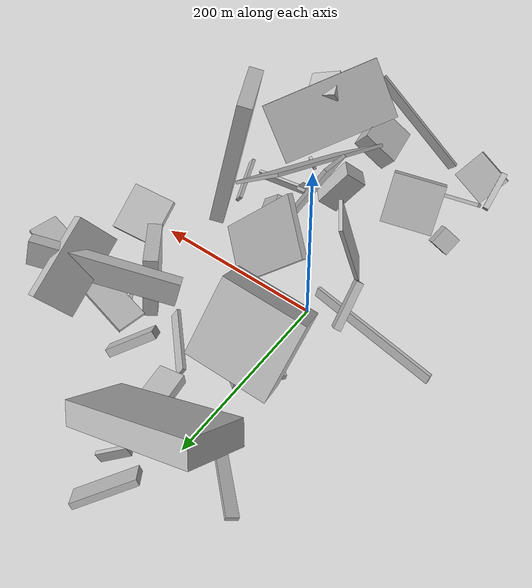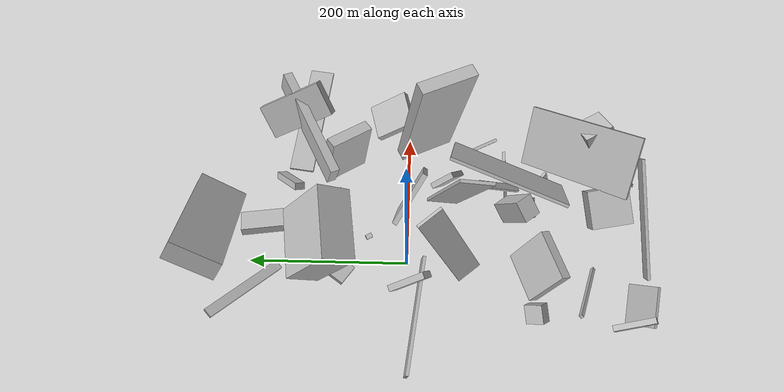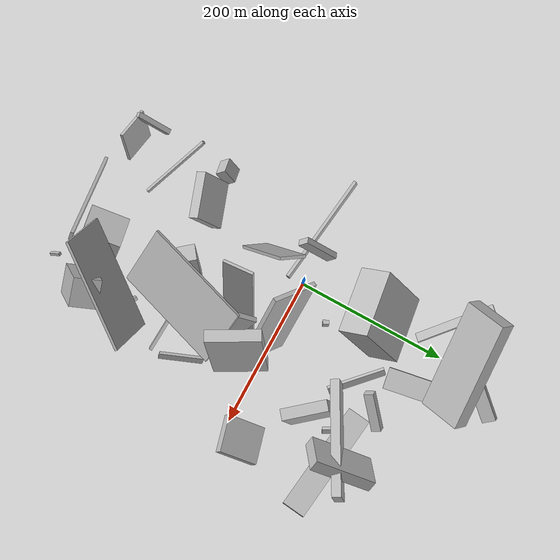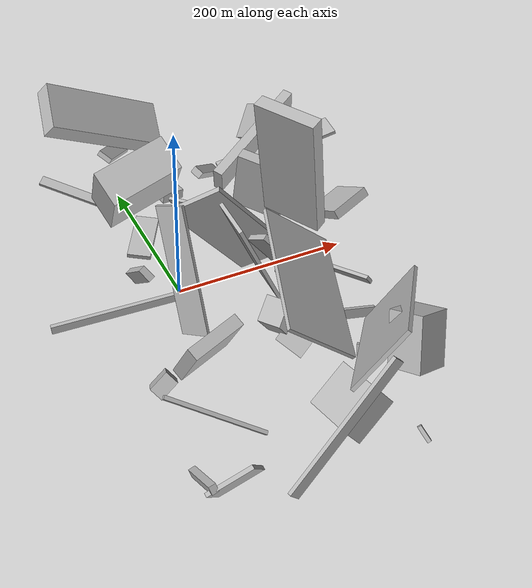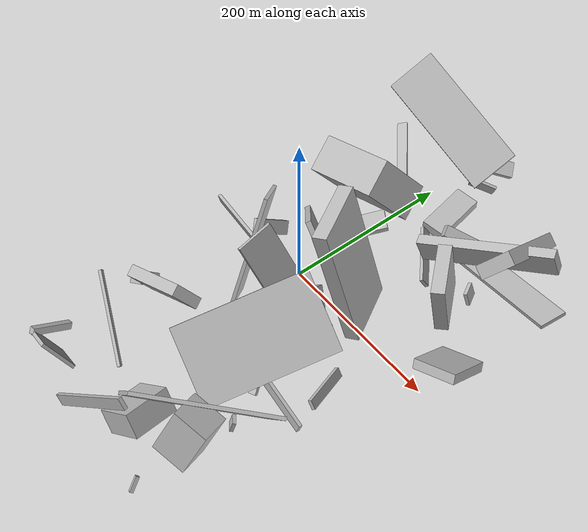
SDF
<sdf version="1.6">
 <world name="default">
  <model name="building_5">
   <static>0</static>
   <pose>43.308065743925745 -125.7684992429247 55.695758580244686 -1.616280933363117 -0.8932459094333306 -2.4167070065664267</pose>
   <link name="link">
    <gravity>0</gravity>
    <pose>0 0 11.5 0 0 0</pose>
    <collision name="collision"><geometry><box><size>50 27 23</size></box></geometry></collision>
    <visual name="visual">
     <cast_shadows>0</cast_shadows>
     <geometry><box><size>50 27 23</size></box></geometry>
     <material>
      <script>
       <uri>model://HANNAS_wall/materials/scripts</uri>
       <uri>model://HANNAS_wall/materials/textures</uri>
       <name>vrc/HANNAS_wall</name>
      </script>
     </material>
    </visual>
   </link>
  </model>
  <model name="building_7">
   <static>0</static>
   <pose>62.46410898389436 232.97263206005934 65.0760851570191 0.8580708712680871 -0.8370286651534422 -0.9034059144726357</pose>
   <link name="link">
    <gravity>0</gravity>
    <pose>0 0 75.0 0 0 0</pose>
    <collision name="collision"><geometry><box><size>23 58 150</size></box></geometry></collision>
    <visual name="visual">
     <cast_shadows>0</cast_shadows>
     <geometry><box><size>23 58 150</size></box></geometry>
     <material>
      <script>
       <uri>model://HANNAS_wall/materials/scripts</uri>
       <uri>model://HANNAS_wall/materials/textures</uri>
       <name>vrc/HANNAS_wall</name>
      </script>
     </material>
    </visual>
   </link>
  </model>
  <model name="building_8">
   <static>0</static>
   <pose>-2.858110213210952 86.00785326212018 70.88119877365017 0.37871451936700407 -0.9146847505984498 -1.7391639583366973</pose>
   <link name="link">
    <gravity>0</gravity>
    <pose>0 0 21.0 0 0 0</pose>
    <collision name="collision"><geometry><box><size>84 86 42</size></box></geometry></collision>
    <visual name="visual">
     <cast_shadows>0</cast_shadows>
     <geometry><box><size>84 86 42</size></box></geometry>
     <material>
      <script>
       <uri>model://HANNAS_wall/materials/scripts</uri>
       <uri>model://HANNAS_wall/materials/textures</uri>
       <name>vrc/HANNAS_wall</name>
      </script>
     </material>
    </visual>
   </link>
  </model>
  <model name="building_9">
   <static>0</static>
   <pose>59.04749172869745 -61.31570376910122 79.38298153601872 2.683261918992077 -1.0733628050342545 -2.6663340335906196</pose>
   <link name="link">
    <gravity>0</gravity>
    <pose>0 0 2.0 0 0 0</pose>
    <collision name="collision"><geometry><box><size>150 41 4</size></box></geometry></collision>
    <visual name="visual">
     <cast_shadows>0</cast_shadows>
     <geometry><box><size>150 41 4</size></box></geometry>
     <material>
      <script>
       <uri>model://HANNAS_wall/materials/scripts</uri>
       <uri>model://HANNAS_wall/materials/textures</uri>
       <name>vrc/HANNAS_wall</name>
      </script>
     </material>
    </visual>
   </link>
  </model>
  <model name="building_12">
   <static>0</static>
   <pose>-31.19914601659315 -158.445924509394 60.30983101429967 0.20465477765923676 -1.0512938101682567 -1.4185695928341104</pose>
   <link name="link">
    <gravity>0</gravity>
    <pose>0 0 6.5 0 0 0</pose>
    <collision name="collision"><geometry><box><size>58 59 13</size></box></geometry></collision>
    <visual name="visual">
     <cast_shadows>0</cast_shadows>
     <geometry><box><size>58 59 13</size></box></geometry>
     <material>
      <script>
       <uri>model://HANNAS_wall/materials/scripts</uri>
       <uri>model://HANNAS_wall/materials/textures</uri>
       <name>vrc/HANNAS_wall</name>
      </script>
     </material>
    </visual>
   </link>
  </model>
  <model name="building_14">
   <static>0</static>
   <pose>172.3631434191186 186.9894500913482 70.54110875427926 1.04961751331926 0.5502648541931557 -0.16433016860562305</pose>
   <link name="link">
    <gravity>0</gravity>
    <pose>0 0 43.5 0 0 0</pose>
    <collision name="collision"><geometry><box><size>16 44 87</size></box></geometry></collision>
    <visual name="visual">
     <cast_shadows>0</cast_shadows>
     <geometry><box><size>16 44 87</size></box></geometry>
     <material>
      <script>
       <uri>model://HANNAS_wall/materials/scripts</uri>
       <uri>model://HANNAS_wall/materials/textures</uri>
       <name>vrc/HANNAS_wall</name>
      </script>
     </material>
    </visual>
   </link>
  </model>
  <model name="building_15">
   <static>0</static>
   <pose>1.3118282758557323 247.58767687490857 29.76967426818109 2.1635543358597005 0.9945035083666782 2.9432818469126083</pose>
   <link name="link">
    <gravity>0</gravity>
    <pose>0 0 31.5 0 0 0</pose>
    <collision name="collision"><geometry><box><size>7 19 63</size></box></geometry></collision>
    <visual name="visual">
     <cast_shadows>0</cast_shadows>
     <geometry><box><size>7 19 63</size></box></geometry>
     <material>
      <script>
       <uri>model://HANNAS_wall/materials/scripts</uri>
       <uri>model://HANNAS_wall/materials/textures</uri>
       <name>vrc/HANNAS_wall</name>
      </script>
     </material>
    </visual>
   </link>
  </model>
  <model name="building_17">
   <static>0</static>
   <pose>146.78568653913914 -64.90050511559802 33.80148506231902 1.173241185745294 0.9657528484296073 0.04226238517939493</pose>
   <link name="link">
    <gravity>0</gravity>
    <pose>0 0 28.5 0 0 0</pose>
    <collision name="collision"><geometry><box><size>11 4 57</size></box></geometry></collision>
    <visual name="visual">
     <cast_shadows>0</cast_shadows>
     <geometry><box><size>11 4 57</size></box></geometry>
     <material>
      <script>
       <uri>model://HANNAS_wall/materials/scripts</uri>
       <uri>model://HANNAS_wall/materials/textures</uri>
       <name>vrc/HANNAS_wall</name>
      </script>
     </material>
    </visual>
   </link>
  </model>
  <model name="building_19">
   <static>0</static>
   <pose>-46.504639792128685 16.442453249598373 25.776722871572346 -0.5186908512937385 -0.7575767978114667 2.3071688369384127</pose>
   <link name="link">
    <gravity>0</gravity>
    <pose>0 0 26.5 0 0 0</pose>
    <collision name="collision"><geometry><box><size>16 8 53</size></box></geometry></collision>
    <visual name="visual">
     <cast_shadows>0</cast_shadows>
     <geometry><box><size>16 8 53</size></box></geometry>
     <material>
      <script>
       <uri>model://HANNAS_wall/materials/scripts</uri>
       <uri>model://HANNAS_wall/materials/textures</uri>
       <name>vrc/HANNAS_wall</name>
      </script>
     </material>
    </visual>
   </link>
  </model>
  <model name="building_23">
   <static>0</static>
   <pose>-43.08022663556655 -280.1313283696426 38.92379819497377 2.381515958525629 -0.8777690759578263 -2.3835840232118977</pose>
   <link name="link">
    <gravity>0</gravity>
    <pose>0 0 23.5 0 0 0</pose>
    <collision name="collision"><geometry><box><size>44 4 47</size></box></geometry></collision>
    <visual name="visual">
     <cast_shadows>0</cast_shadows>
     <geometry><box><size>44 4 47</size></box></geometry>
     <material>
      <script>
       <uri>model://HANNAS_wall/materials/scripts</uri>
       <uri>model://HANNAS_wall/materials/textures</uri>
       <name>vrc/HANNAS_wall</name>
      </script>
     </material>
    </visual>
   </link>
  </model>
  <model name="building_24">
   <static>0</static>
   <pose>164.87668037523042 -157.7338235790059 61.24483464600098 1.22140475387325 0.5332434747144368 -0.8495108967502459</pose>
   <link name="link">
    <gravity>0</gravity>
    <pose>0 0 75.0 0 0 0</pose>
    <collision name="collision"><geometry><box><size>4 77 150</size></box></geometry></collision>
    <visual name="visual">
     <cast_shadows>0</cast_shadows>
     <geometry><box><size>4 77 150</size></box></geometry>
     <material>
      <script>
       <uri>model://HANNAS_wall/materials/scripts</uri>
       <uri>model://HANNAS_wall/materials/textures</uri>
       <name>vrc/HANNAS_wall</name>
      </script>
     </material>
    </visual>
   </link>
  </model>
  <model name="building_25">
   <static>0</static>
   <pose>-6.164391928755931 -63.98332453925205 77.44220343365868 1.906886519470772 -0.18465450730432614 -2.597918858213445</pose>
   <link name="link">
    <gravity>0</gravity>
    <pose>0 0 16.5 0 0 0</pose>
    <collision name="collision"><geometry><box><size>4 141 33</size></box></geometry></collision>
    <visual name="visual">
     <cast_shadows>0</cast_shadows>
     <geometry><box><size>4 141 33</size></box></geometry>
     <material>
      <script>
       <uri>model://HANNAS_wall/materials/scripts</uri>
       <uri>model://HANNAS_wall/materials/textures</uri>
       <name>vrc/HANNAS_wall</name>
      </script>
     </material>
    </visual>
   </link>
  </model>
  <model name="building_26">
   <static>0</static>
   <pose>70.44085549465922 -135.59576131624726 26.087435725498874 -0.38001998143251603 0.8662825179011396 -2.781627044249823</pose>
   <link name="link">
    <gravity>0</gravity>
    <pose>0 0 9.0 0 0 0</pose>
    <collision name="collision"><geometry><box><size>4 15 18</size></box></geometry></collision>
    <visual name="visual">
     <cast_shadows>0</cast_shadows>
     <geometry><box><size>4 15 18</size></box></geometry>
     <material>
      <script>
       <uri>model://HANNAS_wall/materials/scripts</uri>
       <uri>model://HANNAS_wall/materials/textures</uri>
       <name>vrc/HANNAS_wall</name>
      </script>
     </material>
    </visual>
   </link>
  </model>
  <model name="building_27">
   <static>0</static>
   <pose>183.24687054760764 117.34588632641471 59.744736732739284 -1.5194113412977805 -0.25835244181470607 -0.12714085746042594</pose>
   <link name="link">
    <gravity>0</gravity>
    <pose>0 0 15.5 0 0 0</pose>
    <collision name="collision"><geometry><box><size>148 4 31</size></box></geometry></collision>
    <visual name="visual">
     <cast_shadows>0</cast_shadows>
     <geometry><box><size>148 4 31</size></box></geometry>
     <material>
      <script>
       <uri>model://HANNAS_wall/materials/scripts</uri>
       <uri>model://HANNAS_wall/materials/textures</uri>
       <name>vrc/HANNAS_wall</name>
      </script>
     </material>
    </visual>
   </link>
  </model>
  <model name="building_29">
   <static>0</static>
   <pose>90.64047574425372 95.80162492945603 61.65112747430918 -1.2855682015142902 0.1623622003063317 -1.0215201357245747</pose>
   <link name="link">
    <gravity>0</gravity>
    <pose>0 0 75.0 0 0 0</pose>
    <collision name="collision"><geometry><box><size>12 30 150</size></box></geometry></collision>
    <visual name="visual">
     <cast_shadows>0</cast_shadows>
     <geometry><box><size>12 30 150</size></box></geometry>
     <material>
      <script>
       <uri>model://HANNAS_wall/materials/scripts</uri>
       <uri>model://HANNAS_wall/materials/textures</uri>
       <name>vrc/HANNAS_wall</name>
      </script>
     </material>
    </visual>
   </link>
  </model>
  <model name="building_32">
   <static>0</static>
   <pose>61.70545451761856 -1.4680584676386916 69.94029774861089 1.9679694018430722 -0.5947736028775612 -0.6660198988637496</pose>
   <link name="link">
    <gravity>0</gravity>
    <pose>0 0 3.0 0 0 0</pose>
    <collision name="collision"><geometry><box><size>66 132 6</size></box></geometry></collision>
    <visual name="visual">
     <cast_shadows>0</cast_shadows>
     <geometry><box><size>66 132 6</size></box></geometry>
     <material>
      <script>
       <uri>model://HANNAS_wall/materials/scripts</uri>
       <uri>model://HANNAS_wall/materials/textures</uri>
       <name>vrc/HANNAS_wall</name>
      </script>
     </material>
    </visual>
   </link>
  </model>
  <model name="building_33">
   <static>0</static>
   <pose>132.10335985510054 -251.09310694290377 57.80163961452449 -0.3445095229494644 0.3208697835886746 0.27934044501626215</pose>
   <link name="link">
    <gravity>0</gravity>
    <pose>0 0 27.5 0 0 0</pose>
    <collision name="collision"><geometry><box><size>38 36 55</size></box></geometry></collision>
    <visual name="visual">
     <cast_shadows>0</cast_shadows>
     <geometry><box><size>38 36 55</size></box></geometry>
     <material>
      <script>
       <uri>model://HANNAS_wall/materials/scripts</uri>
       <uri>model://HANNAS_wall/materials/textures</uri>
       <name>vrc/HANNAS_wall</name>
      </script>
     </material>
    </visual>
   </link>
  </model>
  <model name="building_37">
   <static>0</static>
   <pose>87.21496383147559 -123.63808306847075 76.30844507666635 0.6920948796274919 -0.20099861968358576 1.2603663345409992</pose>
   <link name="link">
    <gravity>0</gravity>
    <pose>0 0 2.0 0 0 0</pose>
    <collision name="collision"><geometry><box><size>150 89 4</size></box></geometry></collision>
    <visual name="visual">
     <cast_shadows>0</cast_shadows>
     <geometry><box><size>150 89 4</size></box></geometry>
     <material>
      <script>
       <uri>model://HANNAS_wall/materials/scripts</uri>
       <uri>model://HANNAS_wall/materials/textures</uri>
       <name>vrc/HANNAS_wall</name>
      </script>
     </material>
    </visual>
   </link>
  </model>
  <model name="building_39">
   <static>0</static>
   <pose>-81.19647953809957 -160.21630437603062 39.33559823998151 2.3715104917238006 -0.6477725141906437 2.2808159415475617</pose>
   <link name="link">
    <gravity>0</gravity>
    <pose>0 0 11.0 0 0 0</pose>
    <collision name="collision"><geometry><box><size>15 22 22</size></box></geometry></collision>
    <visual name="visual">
     <cast_shadows>0</cast_shadows>
     <geometry><box><size>15 22 22</size></box></geometry>
     <material>
      <script>
       <uri>model://HANNAS_wall/materials/scripts</uri>
       <uri>model://HANNAS_wall/materials/textures</uri>
       <name>vrc/HANNAS_wall</name>
      </script>
     </material>
    </visual>
   </link>
  </model>
  <model name="building_43">
   <static>0</static>
   <pose>60.9094352003785 -227.3905898614815 39.271035663861326 1.4101269222915833 -0.6374576986844529 0.22856168285224215</pose>
   <link name="link">
    <gravity>0</gravity>
    <pose>0 0 25.5 0 0 0</pose>
    <collision name="collision"><geometry><box><size>48 27 51</size></box></geometry></collision>
    <visual name="visual">
     <cast_shadows>0</cast_shadows>
     <geometry><box><size>48 27 51</size></box></geometry>
     <material>
      <script>
       <uri>model://HANNAS_wall/materials/scripts</uri>
       <uri>model://HANNAS_wall/materials/textures</uri>
       <name>vrc/HANNAS_wall</name>
      </script>
     </material>
    </visual>
   </link>
  </model>
  <model name="building_47">
   <static>0</static>
   <pose>-5.437909759843251 95.88032263975894 11.606947414561464 -3.0916019653324516 -0.2539509545276378 1.0035915484813784</pose>
   <link name="link">
    <gravity>0</gravity>
    <pose>0 0 3.0 0 0 0</pose>
    <collision name="collision"><geometry><box><size>57 27 6</size></box></geometry></collision>
    <visual name="visual">
     <cast_shadows>0</cast_shadows>
     <geometry><box><size>57 27 6</size></box></geometry>
     <material>
      <script>
       <uri>model://HANNAS_wall/materials/scripts</uri>
       <uri>model://HANNAS_wall/materials/textures</uri>
       <name>vrc/HANNAS_wall</name>
      </script>
     </material>
    </visual>
   </link>
  </model>
  <model name="building_50">
   <static>0</static>
   <pose>129.38562455848475 -18.624812660504922 77.51843198161629 -0.04712040459571575 0.2364490822524822 -2.6442786872964885</pose>
   <link name="link">
    <gravity>0</gravity>
    <pose>0 0 75.0 0 0 0</pose>
    <collision name="collision"><geometry><box><size>15 68 150</size></box></geometry></collision>
    <visual name="visual">
     <cast_shadows>0</cast_shadows>
     <geometry><box><size>15 68 150</size></box></geometry>
     <material>
      <script>
       <uri>model://HANNAS_wall/materials/scripts</uri>
       <uri>model://HANNAS_wall/materials/textures</uri>
       <name>vrc/HANNAS_wall</name>
      </script>
     </material>
    </visual>
   </link>
  </model>
  <model name="building_51">
   <static>0</static>
   <pose>-86.87658256827702 -266.5978306429211 24.145862196742474 0.5409906617264366 0.18224691662653764 -3.013399903136151</pose>
   <link name="link">
    <gravity>0</gravity>
    <pose>0 0 4.0 0 0 0</pose>
    <collision name="collision"><geometry><box><size>7 49 8</size></box></geometry></collision>
    <visual name="visual">
     <cast_shadows>0</cast_shadows>
     <geometry><box><size>7 49 8</size></box></geometry>
     <material>
      <script>
       <uri>model://HANNAS_wall/materials/scripts</uri>
       <uri>model://HANNAS_wall/materials/textures</uri>
       <name>vrc/HANNAS_wall</name>
      </script>
     </material>
    </visual>
   </link>
  </model>
  <model name="building_52">
   <static>0</static>
   <pose>63.283453029344976 184.79859493814126 15.47806005064232 -0.5991846984119777 1.4907519933630395 2.7135531032901556</pose>
   <link name="link">
    <gravity>0</gravity>
    <pose>0 0 14.0 0 0 0</pose>
    <collision name="collision"><geometry><box><size>12 65 28</size></box></geometry></collision>
    <visual name="visual">
     <cast_shadows>0</cast_shadows>
     <geometry><box><size>12 65 28</size></box></geometry>
     <material>
      <script>
       <uri>model://HANNAS_wall/materials/scripts</uri>
       <uri>model://HANNAS_wall/materials/textures</uri>
       <name>vrc/HANNAS_wall</name>
      </script>
     </material>
    </visual>
   </link>
  </model>
  <model name="building_53">
   <static>0</static>
   <pose>71.22787326190974 -161.82473433962497 28.110442943429856 1.075827612200507 -0.6123365159948456 -2.231152333517723</pose>
   <link name="link">
    <gravity>0</gravity>
    <pose>0 0 15.5 0 0 0</pose>
    <collision name="collision"><geometry><box><size>6 26 31</size></box></geometry></collision>
    <visual name="visual">
     <cast_shadows>0</cast_shadows>
     <geometry><box><size>6 26 31</size></box></geometry>
     <material>
      <script>
       <uri>model://HANNAS_wall/materials/scripts</uri>
       <uri>model://HANNAS_wall/materials/textures</uri>
       <name>vrc/HANNAS_wall</name>
      </script>
     </material>
    </visual>
   </link>
  </model>
  <model name="building_55">
   <static>0</static>
   <pose>35.260685710257334 -286.1295075227973 58.41533649214146 1.4824977401607682 -0.7585009138348516 0.18688248521455555</pose>
   <link name="link">
    <gravity>0</gravity>
    <pose>0 0 2.0 0 0 0</pose>
    <collision name="collision"><geometry><box><size>150 13 4</size></box></geometry></collision>
    <visual name="visual">
     <cast_shadows>0</cast_shadows>
     <geometry><box><size>150 13 4</size></box></geometry>
     <material>
      <script>
       <uri>model://HANNAS_wall/materials/scripts</uri>
       <uri>model://HANNAS_wall/materials/textures</uri>
       <name>vrc/HANNAS_wall</name>
      </script>
     </material>
    </visual>
   </link>
  </model>
  <model name="building_56">
   <static>0</static>
   <pose>51.33089452537533 252.928216811433 11.789349883344919 0.3659847943461607 -1.2253102927372648 0.2937715411697426</pose>
   <link name="link">
    <gravity>0</gravity>
    <pose>0 0 15.5 0 0 0</pose>
    <collision name="collision"><geometry><box><size>12 4 31</size></box></geometry></collision>
    <visual name="visual">
     <cast_shadows>0</cast_shadows>
     <geometry><box><size>12 4 31</size></box></geometry>
     <material>
      <script>
       <uri>model://HANNAS_wall/materials/scripts</uri>
       <uri>model://HANNAS_wall/materials/textures</uri>
       <name>vrc/HANNAS_wall</name>
      </script>
     </material>
    </visual>
   </link>
  </model>
  <model name="building_58">
   <static>0</static>
   <pose>33.330262903091224 50.816269513696305 15.343594546562963 -2.88924497964329 -1.0990273518950782 -2.899155825728649</pose>
   <link name="link">
    <gravity>0</gravity>
    <pose>0 0 3.0 0 0 0</pose>
    <collision name="collision"><geometry><box><size>7 8 6</size></box></geometry></collision>
    <visual name="visual">
     <cast_shadows>0</cast_shadows>
     <geometry><box><size>7 8 6</size></box></geometry>
     <material>
      <script>
       <uri>model://HANNAS_wall/materials/scripts</uri>
       <uri>model://HANNAS_wall/materials/textures</uri>
       <name>vrc/HANNAS_wall</name>
      </script>
     </material>
    </visual>
   </link>
  </model>
  <model name="building_59">
   <static>0</static>
   <pose>74.33144101894761 116.10534530196466 19.594919119013493 -3.1034931652401037 -0.603423793837367 0.7991665166598355</pose>
   <link name="link">
    <gravity>0</gravity>
    <pose>0 0 6.5 0 0 0</pose>
    <collision name="collision"><geometry><box><size>4 76 13</size></box></geometry></collision>
    <visual name="visual">
     <cast_shadows>0</cast_shadows>
     <geometry><box><size>4 76 13</size></box></geometry>
     <material>
      <script>
       <uri>model://HANNAS_wall/materials/scripts</uri>
       <uri>model://HANNAS_wall/materials/textures</uri>
       <name>vrc/HANNAS_wall</name>
      </script>
     </material>
    </visual>
   </link>
  </model>
  <model name="building_60">
   <static>0</static>
   <pose>150.37380248798317 119.03488113487724 19.603070281402896 1.889931201636662 -0.017883143609308018 -1.057715036356727</pose>
   <link name="link">
    <gravity>0</gravity>
    <pose>0 0 2.0 0 0 0</pose>
    <collision name="collision"><geometry><box><size>18 17 4</size></box></geometry></collision>
    <visual name="visual">
     <cast_shadows>0</cast_shadows>
     <geometry><box><size>18 17 4</size></box></geometry>
     <material>
      <script>
       <uri>model://HANNAS_wall/materials/scripts</uri>
       <uri>model://HANNAS_wall/materials/textures</uri>
       <name>vrc/HANNAS_wall</name>
      </script>
     </material>
    </visual>
   </link>
  </model>
  <model name="building_61">
   <static>0</static>
   <pose>125.87341154546897 -129.6034992546651 18.366489385291153 0.17048417797208767 -0.1940926620374913 3.077774007538699</pose>
   <link name="link">
    <gravity>0</gravity>
    <pose>0 0 5.5 0 0 0</pose>
    <collision name="collision"><geometry><box><size>80 4 11</size></box></geometry></collision>
    <visual name="visual">
     <cast_shadows>0</cast_shadows>
     <geometry><box><size>80 4 11</size></box></geometry>
     <material>
      <script>
       <uri>model://HANNAS_wall/materials/scripts</uri>
       <uri>model://HANNAS_wall/materials/textures</uri>
       <name>vrc/HANNAS_wall</name>
      </script>
     </material>
    </visual>
   </link>
  </model>
  <model name="building_62">
   <static>0</static>
   <pose>114.97947248650662 -289.72849272213654 24.58779485581058 2.4617865313918057 -0.5733478870873147 -0.21850924296366456</pose>
   <link name="link">
    <gravity>0</gravity>
    <pose>0 0 8.5 0 0 0</pose>
    <collision name="collision"><geometry><box><size>4 4 17</size></box></geometry></collision>
    <visual name="visual">
     <cast_shadows>0</cast_shadows>
     <geometry><box><size>4 4 17</size></box></geometry>
     <material>
      <script>
       <uri>model://HANNAS_wall/materials/scripts</uri>
       <uri>model://HANNAS_wall/materials/textures</uri>
       <name>vrc/HANNAS_wall</name>
      </script>
     </material>
    </visual>
   </link>
  </model>
  <model name="building_65">
   <static>0</static>
   <pose>117.4640866724336 -177.8520854514677 20.871770687162183 -1.2141191551494548 1.2632823518570175 -1.8530216576653946</pose>
   <link name="link">
    <gravity>0</gravity>
    <pose>0 0 6.0 0 0 0</pose>
    <collision name="collision"><geometry><box><size>13 4 12</size></box></geometry></collision>
    <visual name="visual">
     <cast_shadows>0</cast_shadows>
     <geometry><box><size>13 4 12</size></box></geometry>
     <material>
      <script>
       <uri>model://HANNAS_wall/materials/scripts</uri>
       <uri>model://HANNAS_wall/materials/textures</uri>
       <name>vrc/HANNAS_wall</name>
      </script>
     </material>
    </visual>
   </link>
  </model>
  <model name="building_68">
   <static>0</static>
   <pose>-52.225050507146136 -210.97384796855528 37.27859687007344 -0.5751603606238969 -0.49108452690690724 2.7265049247978017</pose>
   <link name="link">
    <gravity>0</gravity>
    <pose>0 0 2.0 0 0 0</pose>
    <collision name="collision"><geometry><box><size>105 4 4</size></box></geometry></collision>
    <visual name="visual">
     <cast_shadows>0</cast_shadows>
     <geometry><box><size>105 4 4</size></box></geometry>
     <material>
      <script>
       <uri>model://HANNAS_wall/materials/scripts</uri>
       <uri>model://HANNAS_wall/materials/textures</uri>
       <name>vrc/HANNAS_wall</name>
      </script>
     </material>
    </visual>
   </link>
  </model>
  <model name="building_70">
   <static>0</static>
   <pose>103.87335218620031 -57.14220449166104 44.407127030846695 0.6314996278385179 0.4634209780224148 -2.5927334867606935</pose>
   <link name="link">
    <gravity>0</gravity>
    <pose>0 0 25.0 0 0 0</pose>
    <collision name="collision"><geometry><box><size>7 30 50</size></box></geometry></collision>
    <visual name="visual">
     <cast_shadows>0</cast_shadows>
     <geometry><box><size>7 30 50</size></box></geometry>
     <material>
      <script>
       <uri>model://HANNAS_wall/materials/scripts</uri>
       <uri>model://HANNAS_wall/materials/textures</uri>
       <name>vrc/HANNAS_wall</name>
      </script>
     </material>
    </visual>
   </link>
  </model>
  <model name="building_71">
   <static>0</static>
   <pose>-47.27733809573926 195.95078924886715 16.74409678156453 -0.3477398993334024 -0.2265412418386105 2.4302777381541665</pose>
   <link name="link">
    <gravity>0</gravity>
    <pose>0 0 2.0 0 0 0</pose>
    <collision name="collision"><geometry><box><size>106 12 4</size></box></geometry></collision>
    <visual name="visual">
     <cast_shadows>0</cast_shadows>
     <geometry><box><size>106 12 4</size></box></geometry>
     <material>
      <script>
       <uri>model://HANNAS_wall/materials/scripts</uri>
       <uri>model://HANNAS_wall/materials/textures</uri>
       <name>vrc/HANNAS_wall</name>
      </script>
     </material>
    </visual>
   </link>
  </model>
  <model name="building_73">
   <static>0</static>
   <pose>1.9752335125871099 -20.97634991914047 12.99270530827038 1.6448932467080948 0.2159872473045414 -1.6780998165716383</pose>
   <link name="link">
    <gravity>0</gravity>
    <pose>0 0 75.0 0 0 0</pose>
    <collision name="collision"><geometry><box><size>4 12 150</size></box></geometry></collision>
    <visual name="visual">
     <cast_shadows>0</cast_shadows>
     <geometry><box><size>4 12 150</size></box></geometry>
     <material>
      <script>
       <uri>model://HANNAS_wall/materials/scripts</uri>
       <uri>model://HANNAS_wall/materials/textures</uri>
       <name>vrc/HANNAS_wall</name>
      </script>
     </material>
    </visual>
   </link>
  </model>
  <model name="building_74">
   <static>0</static>
   <pose>134.83761497445855 78.96342098537932 48.44790865846783 -0.8509922450625982 -1.3787182540786824 -1.5941969415198172</pose>
   <link name="link">
    <gravity>0</gravity>
    <pose>0 0 7.5 0 0 0</pose>
    <collision name="collision"><geometry><box><size>75 60 15</size></box></geometry></collision>
    <visual name="visual">
     <cast_shadows>0</cast_shadows>
     <geometry><box><size>75 60 15</size></box></geometry>
     <material>
      <script>
       <uri>model://HANNAS_wall/materials/scripts</uri>
       <uri>model://HANNAS_wall/materials/textures</uri>
       <name>vrc/HANNAS_wall</name>
      </script>
     </material>
    </visual>
   </link>
  </model>
  <model name="building_77">
   <static>0</static>
   <pose>189.5293592725987 18.866529505941642 33.95084425392314 -1.2800686640412309 -0.5098023147169386 -1.456278756155592</pose>
   <link name="link">
    <gravity>0</gravity>
    <pose>0 0 24.5 0 0 0</pose>
    <collision name="collision"><geometry><box><size>55 11 49</size></box></geometry></collision>
    <visual name="visual">
     <cast_shadows>0</cast_shadows>
     <geometry><box><size>55 11 49</size></box></geometry>
     <material>
      <script>
       <uri>model://HANNAS_wall/materials/scripts</uri>
       <uri>model://HANNAS_wall/materials/textures</uri>
       <name>vrc/HANNAS_wall</name>
      </script>
     </material>
    </visual>
   </link>
  </model>
  <model name="building_78">
   <static>0</static>
   <pose>85.94909067235736 -117.51020322407459 45.55684462258115 1.254008220272291 -0.6886032782909888 2.0893327801785087</pose>
   <link name="link">
    <gravity>0</gravity>
    <pose>0 0 4.5 0 0 0</pose>
    <collision name="collision"><geometry><box><size>85 4 9</size></box></geometry></collision>
    <visual name="visual">
     <cast_shadows>0</cast_shadows>
     <geometry><box><size>85 4 9</size></box></geometry>
     <material>
      <script>
       <uri>model://HANNAS_wall/materials/scripts</uri>
       <uri>model://HANNAS_wall/materials/textures</uri>
       <name>vrc/HANNAS_wall</name>
      </script>
     </material>
    </visual>
   </link>
  </model>
  <model name="building_79">
   <static>0</static>
   <pose>97.91382585986806 155.67467949135394 33.06246102551461 0.5403129900756085 -0.43789454115314297 2.0482398336491636</pose>
   <link name="link">
    <gravity>0</gravity>
    <pose>0 0 4.5 0 0 0</pose>
    <collision name="collision"><geometry><box><size>13 55 9</size></box></geometry></collision>
    <visual name="visual">
     <cast_shadows>0</cast_shadows>
     <geometry><box><size>13 55 9</size></box></geometry>
     <material>
      <script>
       <uri>model://HANNAS_wall/materials/scripts</uri>
       <uri>model://HANNAS_wall/materials/textures</uri>
       <name>vrc/HANNAS_wall</name>
      </script>
     </material>
    </visual>
   </link>
  </model>
 </world>
</sdf>
